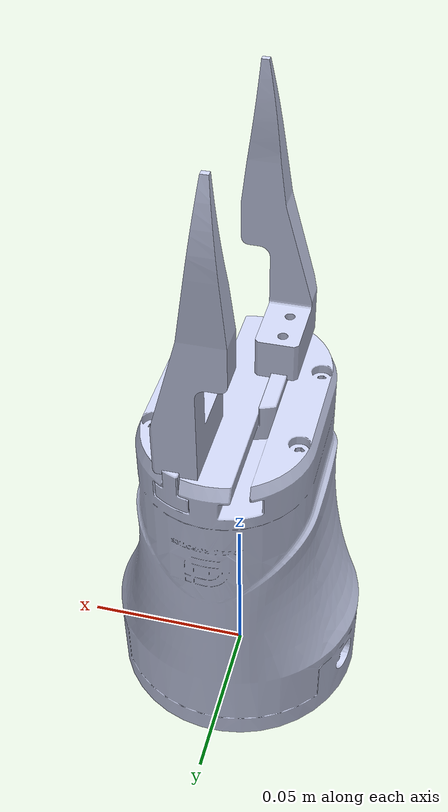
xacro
<?xml version="1.0"?>

<robot name='RG52_050' xmlns:xacro="http://www.ros.org/wiki/xacro">

    <link name="gripper_base_link">
        <inertial>
            <origin
                xyz="-1.9609E-07 0.0008592 0.048373"
                rpy="0 0 0" />
            <mass
                value="0.37215" />
            <inertia
                ixx="0.00030905"
                ixy="-1.1347E-09"
                ixz="1.5187E-10"
                iyy="0.00027065"
                iyz="-2.1562E-07"
                izz="0.00022547" />
        </inertial>
        <visual>
            <origin
                xyz="0 0 0"
                rpy="0 0 0" />
            <geometry>
                <mesh
                filename="package://nova5/meshes/gripper/gripper_base_link.STL" />
            </geometry>
            <material name="">
                <color
                    rgba="0.79216 0.81961 0.93333 1" />
            </material>
        </visual>
        <collision>
            <origin
                xyz="0 0 0.05275"
                rpy="0 0 0" />
            <geometry>
                <cylinder radius="0.0375" length="0.1055"/>
            </geometry>
        </collision>
    </link>

    <link name="gripper_link_1">
        <inertial>
            <origin
                xyz="0.0022142 0.00012014 -0.0066966"
                rpy="0 0 0" />
            <mass
                value="0.003116" />
            <inertia
                ixx="4.9277E-08"
                ixy="-7.6567E-11"
                ixz="2.8454E-09"
                iyy="4.7361E-07"
                iyz="5.4464E-10"
                izz="4.6095E-07" />
        </inertial>

        <visual>
            <origin
                xyz="0 0 0"
                rpy="0 0 0" />
            <geometry>
                <mesh
                    filename="package://nova5/meshes/gripper/gripper_link_1.STL" />
            </geometry>

            <material
                name="">
                <color
                rgba="0.79216 0.81961 0.93333 1" />
            </material>
        </visual>

        <visual>
            <origin
                xyz="0 0 0"
                rpy="0 0 0" />
            <geometry>
                <mesh
                    filename="package://nova5/meshes/gripper/gripper_link_1_finger.STL" />
            </geometry>

            <material
                name="">
                <color
                rgba="0.79216 0.81961 0.93333 1" />
            </material>
        </visual>
        <collision>
            <origin
                xyz="0 0 0"
                rpy="0 0 0" />
            <geometry>
                <mesh
                filename="package://nova5/meshes/gripper/gripper_link_1_finger.STL" />
            </geometry>
        </collision>
    </link>
    <joint
        name="gripper_joint_1"
        type="prismatic">
        <origin
            xyz="-0.00895 -0.017166 0.1075"
            rpy="0 0 1.5708" />
        <parent
            link="gripper_base_link" />
        <child
            link="gripper_link_1" />
        <axis
            xyz="1 0 0" />
        <limit
            lower="0"
            upper="0.026445"
            effort="0"
            velocity="0" />
    </joint>

    <link name="gripper_link_2">
        <inertial>
            <origin
                xyz="0.0022142 0.00012014 -0.0066966"
                rpy="0 0 0" />
            <mass
                value="0.003116" />
            <inertia
                ixx="4.9277E-08"
                ixy="-7.6567E-11"
                ixz="2.8454E-09"
                iyy="4.7361E-07"
                iyz="5.4464E-10"
                izz="4.6095E-07" />
        </inertial>
        <visual>
            <origin
                xyz="0 0 0"
                rpy="0 0 0" />
            <geometry>
                <mesh
                filename="package://nova5/meshes/gripper/gripper_link_2.STL" />
            </geometry>
            <material
                name="">
                <color
                rgba="0.79216 0.81961 0.93333 1" />
            </material>
        </visual>
        <visual>
            <origin
                xyz="0 0 0"
                rpy="0 0 0" />
            <geometry>
                <mesh
                    filename="package://nova5/meshes/gripper/gripper_link_2_finger.STL" />
            </geometry>

            <material
                name="">
                <color
                rgba="0.79216 0.81961 0.93333 1" />
            </material>
        </visual>
        <collision>
            <origin
                xyz="0 0 0"
                rpy="0 0 0" />
            <geometry>
                <mesh
                filename="package://nova5/meshes/gripper/gripper_link_2_finger.STL" />
            </geometry>
        </collision>
    </link>
    <joint
        name="gripper_joint_2"
        type="prismatic">
        <origin
            xyz="0.00895 0.017166 0.1075"
            rpy="0 0 -1.5708" />
        <parent
            link="gripper_base_link" />
        <child
            link="gripper_link_2" />
        <axis
            xyz="1 0 0" />
        <limit
            lower="0"
            upper="0.026445"
            effort="0"
            velocity="0" />

        <mimic joint="gripper_joint_1" multiplier="1" offset="0" />
    </joint>

    <link name="finger_tips_link">
    </link>
    <joint
        name="finger_tips_joint"
        type="fixed">
        <origin
            xyz="0 0 0.18750"
            rpy="0 0 0" />
        <parent
            link="gripper_base_link" />
        <child
            link="finger_tips_link" />
    </joint>

    <link name="grip_link">
    </link>
    <joint
        name="grip_joint"
        type="fixed">
        <origin
            xyz="0 0 0.17406"
            rpy="0 0 0" />
        <parent
            link="gripper_base_link" />
        <child
            link="grip_link" />
    </joint>
</robot>
